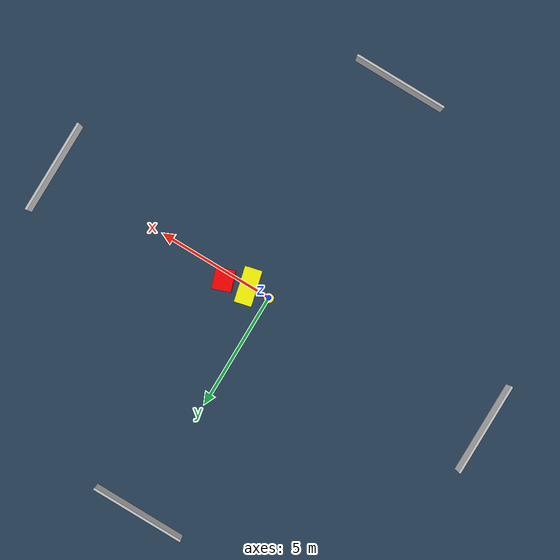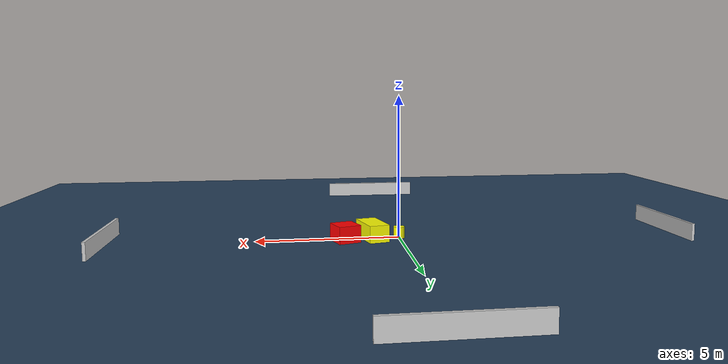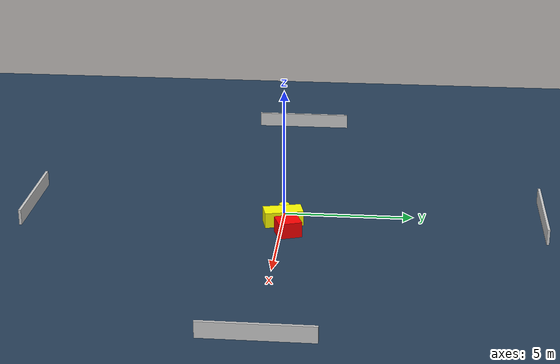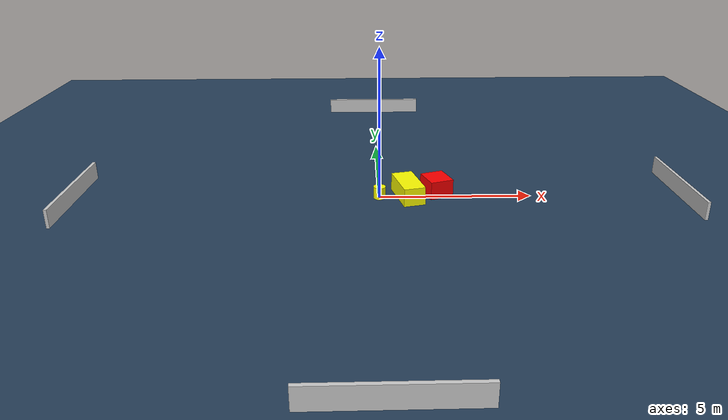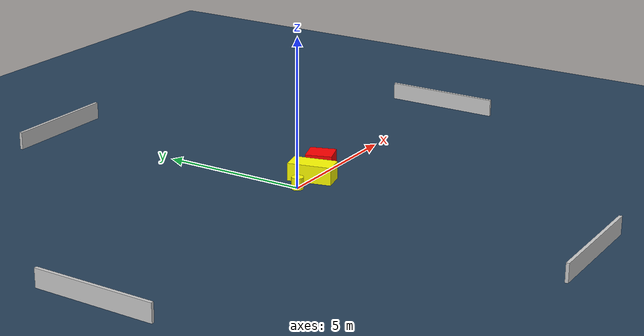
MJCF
<?xml version="1.0" ?>
<mujoco model="generated_environment">
  <option timestep="0.01" integrator="RK4" cone="elliptic"/>
  <default>
    <geom density="1"/>
  </default>
  <asset>
    <texture builtin="gradient" height="3072" name="skybox" rgb1="0.3 0.5 0.7" rgb2="0 0 0" type="skybox" width="512"/>
    <texture builtin="checker" height="300" name="groundplane" rgb1="0.2 0.3 0.4" rgb2="0.1 0.2 0.3" type="2d" width="300"/>
    <material name="groundplane" reflectance="0.2" texrepeat="5 5" texture="groundplane"/>
  </asset>
  <worldbody>
    <light dir="0 0 -1" directional="true" pos="0 0 1.5"/>
    <geom condim="3" friction="0.5 0.005 0.001" material="groundplane" name="floor" pos="0 0 0" size="0 0 0.05" type="plane"/>
    <body name="walls">
      <geom name="wall_1" condim="4" pos="-10.0 0.0 0.3" rgba="0.800000011920929 0.800000011920929 0.800000011920929 1.0" size="0.05 2.0 0.3" type="box"/>
      <geom name="wall_2" condim="4" pos="10.0 0.0 0.3" rgba="0.800000011920929 0.800000011920929 0.800000011920929 1.0" size="0.05 2.0 0.3" type="box"/>
      <geom name="wall_3" condim="4" pos="0.0 -10.0 0.3" rgba="0.800000011920929 0.800000011920929 0.800000011920929 1.0" size="2.0 0.05 0.3" type="box"/>
      <geom name="wall_4" condim="4" pos="0.0 10.0 0.3" rgba="0.800000011920929 0.800000011920929 0.800000011920929 1.0" size="2.0 0.05 0.3" type="box"/>
    </body>
    <body name="robot">
      <joint name="joint_x" type="slide" pos="0 0 0" axis="1 0 0"/>
      <joint name="joint_y" type="slide" pos="0 0 0" axis="0 1 0"/>
      <geom name="robot" type="cylinder" pos="0.0 0.0 0.2" size="0.2 0.2 0.0" mass="5.0" friction="1.0 0.005 0.0001" condim="4" rgba="1.0 1.0 0.0 1.0"/>
    </body>
    <body name="obstacle_1_movable">
      <geom name="obstacle_1_movable" condim="4" pos="0.9421538630346808 0.03287999218992876 0.3" euler="0 0 283.6698419761425" friction="0.0 0.005 0.001" rgba="1.0 1.0 0.0 1.0" size="0.741765470877991 0.35811346450311343 0.3" type="box" mass="0.1"/>
      <joint type="free"/>
    </body>
    <body name="obstacle_2_static">
      <geom name="obstacle_2_static" condim="4" pos="1.915182368145778 0.30959689126127266 0.3" euler="0 0 109.12127808086981" friction="0.0 0.005 0.001" rgba="1.0 0.0 0.0 1.0" size="0.4447005248732047 0.3966202681995885 0.3" type="box"/>
    </body>
  </worldbody>
  <actuator>
    <motor name="actuator_x" joint="joint_x" gear="1" ctrlrange="-1 1"/>
    <motor name="actuator_y" joint="joint_y" gear="1" ctrlrange="-1 1"/>
  </actuator>
</mujoco>
